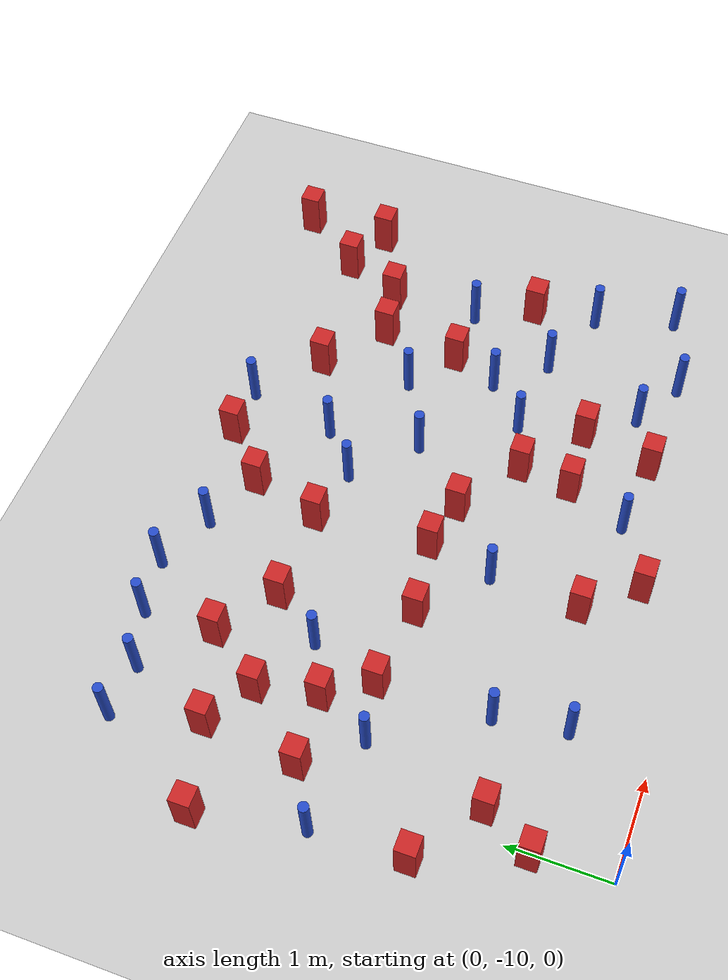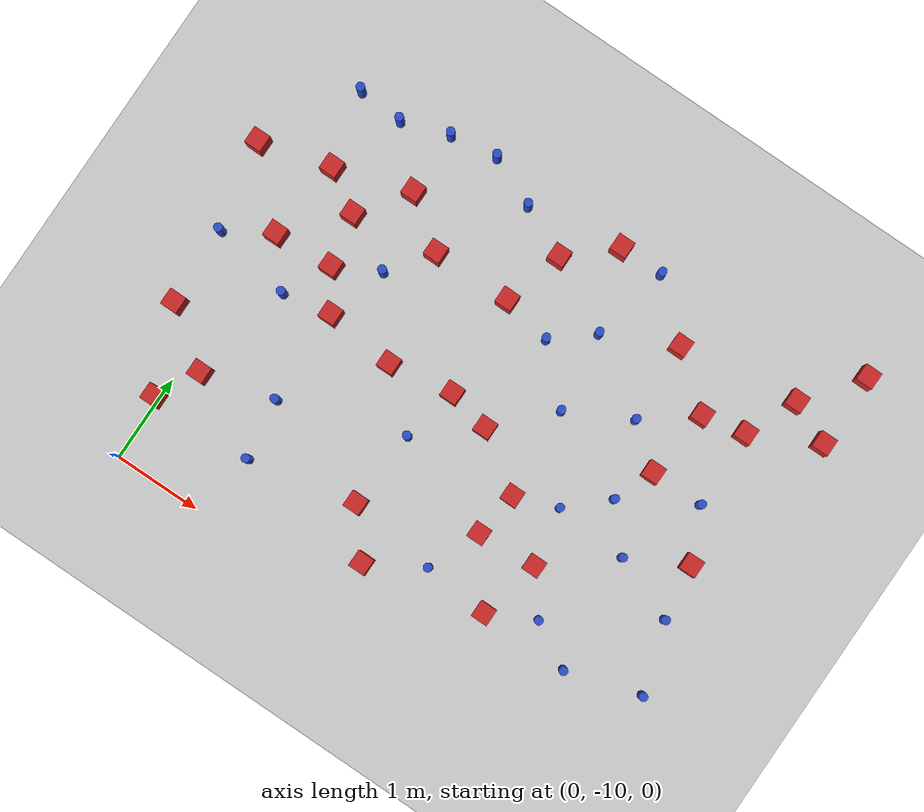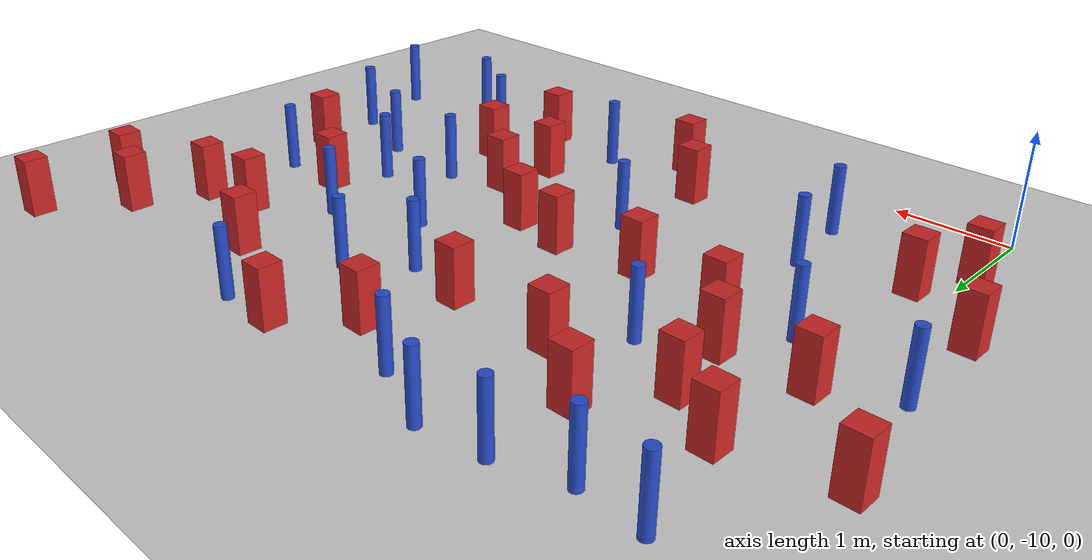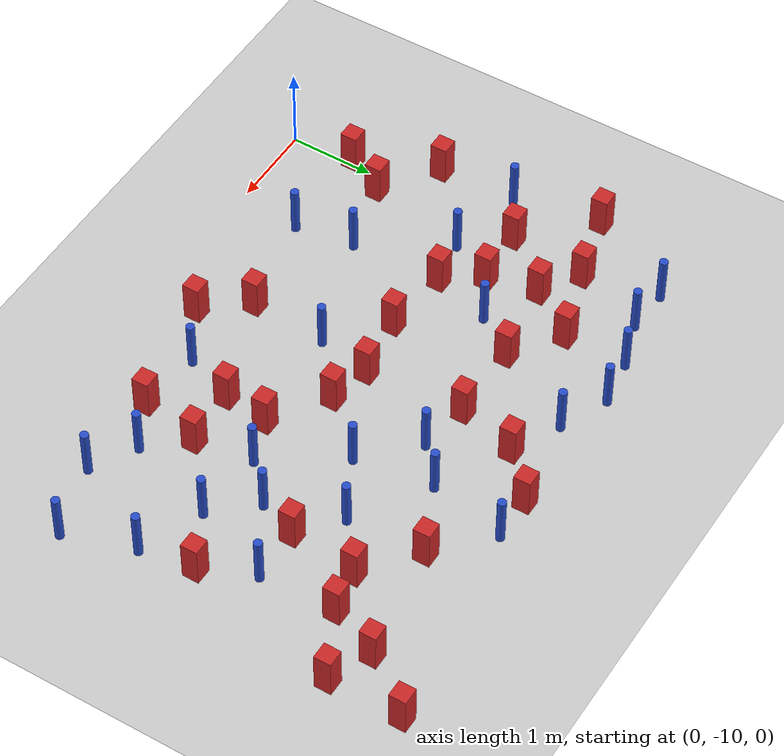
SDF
<sdf version="1.6">
 <world name="default">
  <model name="ground_plane">
   <static>1</static>
   <link name="link">
    <collision name="collision">
     <geometry><plane><normal>0 0 1</normal><size>100 100</size></plane></geometry>
     <surface><friction><ode><mu>100</mu><mu2>50</mu2></ode></friction></surface>
    </collision>
    <visual name="visual">
     <cast_shadows>0</cast_shadows>
     <geometry><plane><normal>0 0 1</normal><size>100 100</size></plane></geometry>
     <material>
      <ambient>1.0 1.0 1.0 1.0</ambient>
      <diffuse>0.8 0.8 0.8 1.0</diffuse>
      <specular>0.01 0.01 0.01 1.000000</specular>
     </material>
    </visual>
   </link>
  </model>
  <model name="pole_obstacle4">
   <static>true</static>
   <pose>1.23686000976 -6.76080997922 -3.09024884793e-07 -7.19054271912e-07 -2.11315075134e-07 -1.93935509265e-07</pose>
   <link name="link">
    <pose>0 0 0.3 0 -0 0</pose>
    <inertial>
     <mass>1</mass>
     <inertia><ixx>0.145833</ixx><ixy>0</ixy><ixz>0</ixz><iyy>0.145833</iyy><iyz>0</iyz><izz>0.125</izz></inertia>
    </inertial>
    <collision name="collision">
     <geometry><cylinder><radius>0.05</radius><length>.6</length></cylinder></geometry>
    </collision>
    <visual name="visual">
     <geometry><cylinder><radius>0.05</radius><length>.6</length></cylinder></geometry>
     <material>
      <script><name>Gazebo/Blue</name><uri>file://media/materials/scripts/gazebo.material</uri></script>
     </material>
    </visual>
   </link>
  </model>
  <model name="square_post_obstacle3">
   <static>true</static>
   <pose>4.9316800552 -6.10498002533 -4.36207812815e-07 3.75137919937e-06 9.77721102514e-07 2.47381364184e-05</pose>
   <link name="link">
    <pose>0 0 0.25 0 -0 0</pose>
    <inertial>
     <mass>100</mass>
     <inertia>
      <ixx>0.166667</ixx>
      <ixy>0</ixy>
      <ixz>0</ixz>
      <iyy>0.166667</iyy>
      <iyz>0</iyz>
      <izz>0.166667</izz>
     </inertia>
    </inertial>
    <collision name="collision"><geometry><box><size>.2 .2 .5</size></box></geometry></collision>
    <visual name="visual">
     <geometry><box><size>.2 .2 .5</size></box></geometry>
     <material>
      <script><name>Gazebo/Red</name><uri>file://media/materials/scripts/gazebo.material</uri></script>
     </material>
    </visual>
   </link>
  </model>
  <model name="square_post_obstacle4">
   <static>true</static>
   <pose>0.746468055196 -7.02115002533 -4.36207812815e-07 3.75137919937e-06 9.77721102514e-07 2.47381364184e-05</pose>
   <link name="link">
    <pose>0 0 0.25 0 -0 0</pose>
    <inertial>
     <mass>100</mass>
     <inertia>
      <ixx>0.166667</ixx>
      <ixy>0</ixy>
      <ixz>0</ixz>
      <iyy>0.166667</iyy>
      <iyz>0</iyz>
      <izz>0.166667</izz>
     </inertia>
    </inertial>
    <collision name="collision"><geometry><box><size>.2 .2 .5</size></box></geometry></collision>
    <visual name="visual">
     <geometry><box><size>.2 .2 .5</size></box></geometry>
     <material>
      <script><name>Gazebo/Red</name><uri>file://media/materials/scripts/gazebo.material</uri></script>
     </material>
    </visual>
   </link>
  </model>
  <model name="square_post_obstacle5">
   <static>true</static>
   <pose>1.0357000552 -7.44995002533 -4.36207812815e-07 3.75137919937e-06 9.77721102514e-07 2.47381364184e-05</pose>
   <link name="link">
    <pose>0 0 0.25 0 -0 0</pose>
    <inertial>
     <mass>100</mass>
     <inertia>
      <ixx>0.166667</ixx>
      <ixy>0</ixy>
      <ixz>0</ixz>
      <iyy>0.166667</iyy>
      <iyz>0</iyz>
      <izz>0.166667</izz>
     </inertia>
    </inertial>
    <collision name="collision"><geometry><box><size>.2 .2 .5</size></box></geometry></collision>
    <visual name="visual">
     <geometry><box><size>.2 .2 .5</size></box></geometry>
     <material>
      <script><name>Gazebo/Red</name><uri>file://media/materials/scripts/gazebo.material</uri></script>
     </material>
    </visual>
   </link>
  </model>
  <model name="square_post_obstacle6">
   <static>true</static>
   <pose>-0.422860944804 -8.28841002533 -4.36207812815e-07 3.75137919937e-06 9.77721102514e-07 2.47381364184e-05</pose>
   <link name="link">
    <pose>0 0 0.25 0 -0 0</pose>
    <inertial>
     <mass>100</mass>
     <inertia>
      <ixx>0.166667</ixx>
      <ixy>0</ixy>
      <ixz>0</ixz>
      <iyy>0.166667</iyy>
      <iyz>0</iyz>
      <izz>0.166667</izz>
     </inertia>
    </inertial>
    <collision name="collision"><geometry><box><size>.2 .2 .5</size></box></geometry></collision>
    <visual name="visual">
     <geometry><box><size>.2 .2 .5</size></box></geometry>
     <material>
      <script><name>Gazebo/Red</name><uri>file://media/materials/scripts/gazebo.material</uri></script>
     </material>
    </visual>
   </link>
  </model>
  <model name="pole_obstacle9">
   <static>true</static>
   <pose>4.71993000976 -8.90393997922 -3.09024884793e-07 -7.19054271912e-07 -2.1131507513e-07 -1.93935509261e-07</pose>
   <link name="link">
    <pose>0 0 0.3 0 -0 0</pose>
    <inertial>
     <mass>1</mass>
     <inertia><ixx>0.145833</ixx><ixy>0</ixy><ixz>0</ixz><iyy>0.145833</iyy><iyz>0</iyz><izz>0.125</izz></inertia>
    </inertial>
    <collision name="collision">
     <geometry><cylinder><radius>0.05</radius><length>.6</length></cylinder></geometry>
    </collision>
    <visual name="visual">
     <geometry><cylinder><radius>0.05</radius><length>.6</length></cylinder></geometry>
     <material>
      <script><name>Gazebo/Blue</name><uri>file://media/materials/scripts/gazebo.material</uri></script>
     </material>
    </visual>
   </link>
  </model>
  <model name="pole_obstacle11">
   <static>true</static>
   <pose>0.473898009761 -7.55703997922 -3.09024884793e-07 -7.19054271912e-07 -2.11315075125e-07 -1.93935509259e-07</pose>
   <link name="link">
    <pose>0 0 0.3 0 -0 0</pose>
    <inertial>
     <mass>1</mass>
     <inertia><ixx>0.145833</ixx><ixy>0</ixy><ixz>0</ixz><iyy>0.145833</iyy><iyz>0</iyz><izz>0.125</izz></inertia>
    </inertial>
    <collision name="collision">
     <geometry><cylinder><radius>0.05</radius><length>.6</length></cylinder></geometry>
    </collision>
    <visual name="visual">
     <geometry><cylinder><radius>0.05</radius><length>.6</length></cylinder></geometry>
     <material>
      <script><name>Gazebo/Blue</name><uri>file://media/materials/scripts/gazebo.material</uri></script>
     </material>
    </visual>
   </link>
  </model>
  <model name="pole_obstacle16">
   <static>true</static>
   <pose>4.23274000976 -7.78472997922 -3.09024884793e-07 -7.19054271911e-07 -2.1131507516e-07 -1.93935509277e-07</pose>
   <link name="link">
    <pose>0 0 0.3 0 -0 0</pose>
    <inertial>
     <mass>1</mass>
     <inertia><ixx>0.145833</ixx><ixy>0</ixy><ixz>0</ixz><iyy>0.145833</iyy><iyz>0</iyz><izz>0.125</izz></inertia>
    </inertial>
    <collision name="collision">
     <geometry><cylinder><radius>0.05</radius><length>.6</length></cylinder></geometry>
    </collision>
    <visual name="visual">
     <geometry><cylinder><radius>0.05</radius><length>.6</length></cylinder></geometry>
     <material>
      <script><name>Gazebo/Blue</name><uri>file://media/materials/scripts/gazebo.material</uri></script>
     </material>
    </visual>
   </link>
  </model>
  <model name="pole_obstacle17">
   <static>true</static>
   <pose>4.37244000976 -6.54633997922 -3.09024884793e-07 -7.19054271911e-07 -2.1131507516e-07 -1.93935509277e-07</pose>
   <link name="link">
    <pose>0 0 0.3 0 -0 0</pose>
    <inertial>
     <mass>1</mass>
     <inertia><ixx>0.145833</ixx><ixy>0</ixy><ixz>0</ixz><iyy>0.145833</iyy><iyz>0</iyz><izz>0.125</izz></inertia>
    </inertial>
    <collision name="collision">
     <geometry><cylinder><radius>0.05</radius><length>.6</length></cylinder></geometry>
    </collision>
    <visual name="visual">
     <geometry><cylinder><radius>0.05</radius><length>.6</length></cylinder></geometry>
     <material>
      <script><name>Gazebo/Blue</name><uri>file://media/materials/scripts/gazebo.material</uri></script>
     </material>
    </visual>
   </link>
  </model>
  <model name="square_post_obstacle13">
   <static>true</static>
   <pose>0.0591860551963 -7.06688002533 -4.36207812815e-07 3.75137919937e-06 9.77721102514e-07 2.47381364184e-05</pose>
   <link name="link">
    <pose>0 0 0.25 0 -0 0</pose>
    <inertial>
     <mass>100</mass>
     <inertia>
      <ixx>0.166667</ixx>
      <ixy>0</ixy>
      <ixz>0</ixz>
      <iyy>0.166667</iyy>
      <iyz>0</iyz>
      <izz>0.166667</izz>
     </inertia>
    </inertial>
    <collision name="collision"><geometry><box><size>.2 .2 .5</size></box></geometry></collision>
    <visual name="visual">
     <geometry><box><size>.2 .2 .5</size></box></geometry>
     <material>
      <script><name>Gazebo/Red</name><uri>file://media/materials/scripts/gazebo.material</uri></script>
     </material>
    </visual>
   </link>
  </model>
  <model name="pole_obstacle18">
   <static>true</static>
   <pose>2.45069000976 -8.07077997922 -3.09024884848e-07 -7.19054271902e-07 -2.11315075199e-07 -1.93935509286e-07</pose>
   <link name="link">
    <pose>0 0 0.3 0 -0 0</pose>
    <inertial>
     <mass>1</mass>
     <inertia><ixx>0.145833</ixx><ixy>0</ixy><ixz>0</ixz><iyy>0.145833</iyy><iyz>0</iyz><izz>0.125</izz></inertia>
    </inertial>
    <collision name="collision">
     <geometry><cylinder><radius>0.05</radius><length>.6</length></cylinder></geometry>
    </collision>
    <visual name="visual">
     <geometry><cylinder><radius>0.05</radius><length>.6</length></cylinder></geometry>
     <material>
      <script><name>Gazebo/Blue</name><uri>file://media/materials/scripts/gazebo.material</uri></script>
     </material>
    </visual>
   </link>
  </model>
  <model name="square_post_obstacle23">
   <static>true</static>
   <pose>1.5911600552 -6.26726002533 -4.36207812815e-07 3.75137919937e-06 9.77721102514e-07 2.47381364184e-05</pose>
   <link name="link">
    <pose>0 0 0.25 0 -0 0</pose>
    <inertial>
     <mass>100</mass>
     <inertia>
      <ixx>0.166667</ixx>
      <ixy>0</ixy>
      <ixz>0</ixz>
      <iyy>0.166667</iyy>
      <iyz>0</iyz>
      <izz>0.166667</izz>
     </inertia>
    </inertial>
    <collision name="collision"><geometry><box><size>.2 .2 .5</size></box></geometry></collision>
    <visual name="visual">
     <geometry><box><size>.2 .2 .5</size></box></geometry>
     <material>
      <script><name>Gazebo/Red</name><uri>file://media/materials/scripts/gazebo.material</uri></script>
     </material>
    </visual>
   </link>
  </model>
  <model name="square_post_obstacle24">
   <static>true</static>
   <pose>2.5116600552 -6.25928002533 -4.36207812815e-07 3.75137919937e-06 9.77721102514e-07 2.47381364184e-05</pose>
   <link name="link">
    <pose>0 0 0.25 0 -0 0</pose>
    <inertial>
     <mass>100</mass>
     <inertia>
      <ixx>0.166667</ixx>
      <ixy>0</ixy>
      <ixz>0</ixz>
      <iyy>0.166667</iyy>
      <iyz>0</iyz>
      <izz>0.166667</izz>
     </inertia>
    </inertial>
    <collision name="collision"><geometry><box><size>.2 .2 .5</size></box></geometry></collision>
    <visual name="visual">
     <geometry><box><size>.2 .2 .5</size></box></geometry>
     <material>
      <script><name>Gazebo/Red</name><uri>file://media/materials/scripts/gazebo.material</uri></script>
     </material>
    </visual>
   </link>
  </model>
  <model name="square_post_obstacle26">
   <static>true</static>
   <pose>2.7080700552 -5.55810002533 -4.36207812815e-07 3.75137919937e-06 9.77721102514e-07 2.47381364184e-05</pose>
   <link name="link">
    <pose>0 0 0.25 0 -0 0</pose>
    <inertial>
     <mass>100</mass>
     <inertia>
      <ixx>0.166667</ixx>
      <ixy>0</ixy>
      <ixz>0</ixz>
      <iyy>0.166667</iyy>
      <iyz>0</iyz>
      <izz>0.166667</izz>
     </inertia>
    </inertial>
    <collision name="collision"><geometry><box><size>.2 .2 .5</size></box></geometry></collision>
    <visual name="visual">
     <geometry><box><size>.2 .2 .5</size></box></geometry>
     <material>
      <script><name>Gazebo/Red</name><uri>file://media/materials/scripts/gazebo.material</uri></script>
     </material>
    </visual>
   </link>
  </model>
  <model name="pole_obstacle35">
   <static>true</static>
   <pose>5.08238000976 -7.84933997922 -3.09024884793e-07 -7.19054271911e-07 -2.1131507516e-07 -1.93935509277e-07</pose>
   <link name="link">
    <pose>0 0 0.3 0 -0 0</pose>
    <inertial>
     <mass>1</mass>
     <inertia><ixx>0.145833</ixx><ixy>0</ixy><ixz>0</ixz><iyy>0.145833</iyy><iyz>0</iyz><izz>0.125</izz></inertia>
    </inertial>
    <collision name="collision">
     <geometry><cylinder><radius>0.05</radius><length>.6</length></cylinder></geometry>
    </collision>
    <visual name="visual">
     <geometry><cylinder><radius>0.05</radius><length>.6</length></cylinder></geometry>
     <material>
      <script><name>Gazebo/Blue</name><uri>file://media/materials/scripts/gazebo.material</uri></script>
     </material>
    </visual>
   </link>
  </model>
  <model name="pole_obstacle37">
   <static>true</static>
   <pose>3.42698000976 -9.10438997922 -3.09024884793e-07 -7.19054271912e-07 -2.11315075137e-07 -1.93935509267e-07</pose>
   <link name="link">
    <pose>0 0 0.3 0 -0 0</pose>
    <inertial>
     <mass>1</mass>
     <inertia><ixx>0.145833</ixx><ixy>0</ixy><ixz>0</ixz><iyy>0.145833</iyy><iyz>0</iyz><izz>0.125</izz></inertia>
    </inertial>
    <collision name="collision">
     <geometry><cylinder><radius>0.05</radius><length>.6</length></cylinder></geometry>
    </collision>
    <visual name="visual">
     <geometry><cylinder><radius>0.05</radius><length>.6</length></cylinder></geometry>
     <material>
      <script><name>Gazebo/Blue</name><uri>file://media/materials/scripts/gazebo.material</uri></script>
     </material>
    </visual>
   </link>
  </model>
  <model name="pole_obstacle38">
   <static>true</static>
   <pose>3.72021000976 -5.09638997922 -3.09024884793e-07 -7.19054271912e-07 -2.11315075134e-07 -1.93935509266e-07</pose>
   <link name="link">
    <pose>0 0 0.3 0 -0 0</pose>
    <inertial>
     <mass>1</mass>
     <inertia><ixx>0.145833</ixx><ixy>0</ixy><ixz>0</ixz><iyy>0.145833</iyy><iyz>0</iyz><izz>0.125</izz></inertia>
    </inertial>
    <collision name="collision">
     <geometry><cylinder><radius>0.05</radius><length>.6</length></cylinder></geometry>
    </collision>
    <visual name="visual">
     <geometry><cylinder><radius>0.05</radius><length>.6</length></cylinder></geometry>
     <material>
      <script><name>Gazebo/Blue</name><uri>file://media/materials/scripts/gazebo.material</uri></script>
     </material>
    </visual>
   </link>
  </model>
  <model name="pole_obstacle44">
   <static>true</static>
   <pose>5.45719000976 -6.90864997922 -3.09024884793e-07 -7.19054271911e-07 -2.1131507516e-07 -1.93935509277e-07</pose>
   <link name="link">
    <pose>0 0 0.3 0 -0 0</pose>
    <inertial>
     <mass>1</mass>
     <inertia><ixx>0.145833</ixx><ixy>0</ixy><ixz>0</ixz><iyy>0.145833</iyy><iyz>0</iyz><izz>0.125</izz></inertia>
    </inertial>
    <collision name="collision">
     <geometry><cylinder><radius>0.05</radius><length>.6</length></cylinder></geometry>
    </collision>
    <visual name="visual">
     <geometry><cylinder><radius>0.05</radius><length>.6</length></cylinder></geometry>
     <material>
      <script><name>Gazebo/Blue</name><uri>file://media/materials/scripts/gazebo.material</uri></script>
     </material>
    </visual>
   </link>
  </model>
  <model name="pole_obstacle46">
   <static>true</static>
   <pose>2.12249000976 -5.29361997922 -3.09024884793e-07 -7.19054271912e-07 -2.11315075134e-07 -1.93935509266e-07</pose>
   <link name="link">
    <pose>0 0 0.3 0 -0 0</pose>
    <inertial>
     <mass>1</mass>
     <inertia><ixx>0.145833</ixx><ixy>0</ixy><ixz>0</ixz><iyy>0.145833</iyy><iyz>0</iyz><izz>0.125</izz></inertia>
    </inertial>
    <collision name="collision">
     <geometry><cylinder><radius>0.05</radius><length>.6</length></cylinder></geometry>
    </collision>
    <visual name="visual">
     <geometry><cylinder><radius>0.05</radius><length>.6</length></cylinder></geometry>
     <material>
      <script><name>Gazebo/Blue</name><uri>file://media/materials/scripts/gazebo.material</uri></script>
     </material>
    </visual>
   </link>
  </model>
  <model name="pole_obstacle54">
   <static>true</static>
   <pose>5.83145000976 -8.14178997922 -3.09024884793e-07 -7.19054271912e-07 -2.1131507513e-07 -1.93935509261e-07</pose>
   <link name="link">
    <pose>0 0 0.3 0 -0 0</pose>
    <inertial>
     <mass>1</mass>
     <inertia><ixx>0.145833</ixx><ixy>0</ixy><ixz>0</ixz><iyy>0.145833</iyy><iyz>0</iyz><izz>0.125</izz></inertia>
    </inertial>
    <collision name="collision">
     <geometry><cylinder><radius>0.05</radius><length>.6</length></cylinder></geometry>
    </collision>
    <visual name="visual">
     <geometry><cylinder><radius>0.05</radius><length>.6</length></cylinder></geometry>
     <material>
      <script><name>Gazebo/Blue</name><uri>file://media/materials/scripts/gazebo.material</uri></script>
     </material>
    </visual>
   </link>
  </model>
  <model name="square_post_obstacle43">
   <static>true</static>
   <pose>0.154384055196 -6.13564002533 -4.36207812815e-07 3.75137919937e-06 9.77721102514e-07 2.47381364184e-05</pose>
   <link name="link">
    <pose>0 0 0.25 0 -0 0</pose>
    <inertial>
     <mass>100</mass>
     <inertia>
      <ixx>0.166667</ixx>
      <ixy>0</ixy>
      <ixz>0</ixz>
      <iyy>0.166667</iyy>
      <iyz>0</iyz>
      <izz>0.166667</izz>
     </inertia>
    </inertial>
    <collision name="collision"><geometry><box><size>.2 .2 .5</size></box></geometry></collision>
    <visual name="visual">
     <geometry><box><size>.2 .2 .5</size></box></geometry>
     <material>
      <script><name>Gazebo/Red</name><uri>file://media/materials/scripts/gazebo.material</uri></script>
     </material>
    </visual>
   </link>
  </model>
  <model name="pole_obstacle57">
   <static>true</static>
   <pose>1.17371000976 -9.23755997922 -3.09024884793e-07 -7.19054271912e-07 -2.1131507515e-07 -1.93935509273e-07</pose>
   <link name="link">
    <pose>0 0 0.3 0 -0 0</pose>
    <inertial>
     <mass>1</mass>
     <inertia><ixx>0.145833</ixx><ixy>0</ixy><ixz>0</ixz><iyy>0.145833</iyy><iyz>0</iyz><izz>0.125</izz></inertia>
    </inertial>
    <collision name="collision">
     <geometry><cylinder><radius>0.05</radius><length>.6</length></cylinder></geometry>
    </collision>
    <visual name="visual">
     <geometry><cylinder><radius>0.05</radius><length>.6</length></cylinder></geometry>
     <material>
      <script><name>Gazebo/Blue</name><uri>file://media/materials/scripts/gazebo.material</uri></script>
     </material>
    </visual>
   </link>
  </model>
  <model name="square_post_obstacle46">
   <static>true</static>
   <pose>4.8444400552 -6.90769002533 -4.36207812815e-07 3.75137919937e-06 9.77721102514e-07 2.47381364184e-05</pose>
   <link name="link">
    <pose>0 0 0.25 0 -0 0</pose>
    <inertial>
     <mass>100</mass>
     <inertia>
      <ixx>0.166667</ixx>
      <ixy>0</ixy>
      <ixz>0</ixz>
      <iyy>0.166667</iyy>
      <iyz>0</iyz>
      <izz>0.166667</izz>
     </inertia>
    </inertial>
    <collision name="collision"><geometry><box><size>.2 .2 .5</size></box></geometry></collision>
    <visual name="visual">
     <geometry><box><size>.2 .2 .5</size></box></geometry>
     <material>
      <script><name>Gazebo/Red</name><uri>file://media/materials/scripts/gazebo.material</uri></script>
     </material>
    </visual>
   </link>
  </model>
  <model name="pole_obstacle72">
   <static>true</static>
   <pose>0.466611009761 -5.30973997922 -3.09024884793e-07 -7.19054271912e-07 -2.11315075128e-07 -1.9393550926e-07</pose>
   <link name="link">
    <pose>0 0 0.3 0 -0 0</pose>
    <inertial>
     <mass>1</mass>
     <inertia><ixx>0.145833</ixx><ixy>0</ixy><ixz>0</ixz><iyy>0.145833</iyy><iyz>0</iyz><izz>0.125</izz></inertia>
    </inertial>
    <collision name="collision">
     <geometry><cylinder><radius>0.05</radius><length>.6</length></cylinder></geometry>
    </collision>
    <visual name="visual">
     <geometry><cylinder><radius>0.05</radius><length>.6</length></cylinder></geometry>
     <material>
      <script><name>Gazebo/Blue</name><uri>file://media/materials/scripts/gazebo.material</uri></script>
     </material>
    </visual>
   </link>
  </model>
  <model name="square_post_obstacle63">
   <static>true</static>
   <pose>3.0874200552 -7.52384002533 -4.36207812815e-07 3.75137919937e-06 9.77721102514e-07 2.47381364184e-05</pose>
   <link name="link">
    <pose>0 0 0.25 0 -0 0</pose>
    <inertial>
     <mass>100</mass>
     <inertia>
      <ixx>0.166667</ixx>
      <ixy>0</ixy>
      <ixz>0</ixz>
      <iyy>0.166667</iyy>
      <iyz>0</iyz>
      <izz>0.166667</izz>
     </inertia>
    </inertial>
    <collision name="collision"><geometry><box><size>.2 .2 .5</size></box></geometry></collision>
    <visual name="visual">
     <geometry><box><size>.2 .2 .5</size></box></geometry>
     <material>
      <script><name>Gazebo/Red</name><uri>file://media/materials/scripts/gazebo.material</uri></script>
     </material>
    </visual>
   </link>
  </model>
  <model name="pole_obstacle77">
   <static>true</static>
   <pose>3.52622000976 -6.00272997922 -3.09024884848e-07 -7.19054271903e-07 -2.11315075193e-07 -1.93935509285e-07</pose>
   <link name="link">
    <pose>0 0 0.3 0 -0 0</pose>
    <inertial>
     <mass>1</mass>
     <inertia><ixx>0.145833</ixx><ixy>0</ixy><ixz>0</ixz><iyy>0.145833</iyy><iyz>0</iyz><izz>0.125</izz></inertia>
    </inertial>
    <collision name="collision">
     <geometry><cylinder><radius>0.05</radius><length>.6</length></cylinder></geometry>
    </collision>
    <visual name="visual">
     <geometry><cylinder><radius>0.05</radius><length>.6</length></cylinder></geometry>
     <material>
      <script><name>Gazebo/Blue</name><uri>file://media/materials/scripts/gazebo.material</uri></script>
     </material>
    </visual>
   </link>
  </model>
  <model name="square_post_obstacle74">
   <static>true</static>
   <pose>3.2084100552 -5.10127002533 -4.36207812815e-07 3.75137919937e-06 9.77721102514e-07 2.47381364184e-05</pose>
   <link name="link">
    <pose>0 0 0.25 0 -0 0</pose>
    <inertial>
     <mass>100</mass>
     <inertia>
      <ixx>0.166667</ixx>
      <ixy>0</ixy>
      <ixz>0</ixz>
      <iyy>0.166667</iyy>
      <iyz>0</iyz>
      <izz>0.166667</izz>
     </inertia>
    </inertial>
    <collision name="collision"><geometry><box><size>.2 .2 .5</size></box></geometry></collision>
    <visual name="visual">
     <geometry><box><size>.2 .2 .5</size></box></geometry>
     <material>
      <script><name>Gazebo/Red</name><uri>file://media/materials/scripts/gazebo.material</uri></script>
     </material>
    </visual>
   </link>
  </model>
  <model name="pole_obstacle87">
   <static>true</static>
   <pose>3.09178000976 -6.37316997922 -3.09024884793e-07 -7.19054271912e-07 -2.11315075134e-07 -1.93935509266e-07</pose>
   <link name="link">
    <pose>0 0 0.3 0 -0 0</pose>
    <inertial>
     <mass>1</mass>
     <inertia><ixx>0.145833</ixx><ixy>0</ixy><ixz>0</ixz><iyy>0.145833</iyy><iyz>0</iyz><izz>0.125</izz></inertia>
    </inertial>
    <collision name="collision">
     <geometry><cylinder><radius>0.05</radius><length>.6</length></cylinder></geometry>
    </collision>
    <visual name="visual">
     <geometry><cylinder><radius>0.05</radius><length>.6</length></cylinder></geometry>
     <material>
      <script><name>Gazebo/Blue</name><uri>file://media/materials/scripts/gazebo.material</uri></script>
     </material>
    </visual>
   </link>
  </model>
  <model name="square_post_obstacle75">
   <static>true</static>
   <pose>5.6851700552 -5.41553002533 -4.36207812815e-07 3.75137919937e-06 9.77721102514e-07 2.47381364184e-05</pose>
   <link name="link">
    <pose>0 0 0.25 0 -0 0</pose>
    <inertial>
     <mass>100</mass>
     <inertia>
      <ixx>0.166667</ixx>
      <ixy>0</ixy>
      <ixz>0</ixz>
      <iyy>0.166667</iyy>
      <iyz>0</iyz>
      <izz>0.166667</izz>
     </inertia>
    </inertial>
    <collision name="collision"><geometry><box><size>.2 .2 .5</size></box></geometry></collision>
    <visual name="visual">
     <geometry><box><size>.2 .2 .5</size></box></geometry>
     <material>
      <script><name>Gazebo/Red</name><uri>file://media/materials/scripts/gazebo.material</uri></script>
     </material>
    </visual>
   </link>
  </model>
  <model name="square_post_obstacle76">
   <static>true</static>
   <pose>6.1777600552 -5.62799002533 -4.36207812815e-07 3.75137919937e-06 9.77721102514e-07 2.47381364184e-05</pose>
   <link name="link">
    <pose>0 0 0.25 0 -0 0</pose>
    <inertial>
     <mass>100</mass>
     <inertia>
      <ixx>0.166667</ixx>
      <ixy>0</ixy>
      <ixz>0</ixz>
      <iyy>0.166667</iyy>
      <iyz>0</iyz>
      <izz>0.166667</izz>
     </inertia>
    </inertial>
    <collision name="collision"><geometry><box><size>.2 .2 .5</size></box></geometry></collision>
    <visual name="visual">
     <geometry><box><size>.2 .2 .5</size></box></geometry>
     <material>
      <script><name>Gazebo/Red</name><uri>file://media/materials/scripts/gazebo.material</uri></script>
     </material>
    </visual>
   </link>
  </model>
  <model name="square_post_obstacle85">
   <static>true</static>
   <pose>4.1937100552 -9.16826002533 -4.36207812815e-07 3.75137919937e-06 9.77721102514e-07 2.47381364184e-05</pose>
   <link name="link">
    <pose>0 0 0.25 0 -0 0</pose>
    <inertial>
     <mass>100</mass>
     <inertia>
      <ixx>0.166667</ixx>
      <ixy>0</ixy>
      <ixz>0</ixz>
      <iyy>0.166667</iyy>
      <iyz>0</iyz>
      <izz>0.166667</izz>
     </inertia>
    </inertial>
    <collision name="collision"><geometry><box><size>.2 .2 .5</size></box></geometry></collision>
    <visual name="visual">
     <geometry><box><size>.2 .2 .5</size></box></geometry>
     <material>
      <script><name>Gazebo/Red</name><uri>file://media/materials/scripts/gazebo.material</uri></script>
     </material>
    </visual>
   </link>
  </model>
  <model name="pole_obstacle110">
   <static>true</static>
   <pose>3.65993000976 -6.91861997922 -3.09024884793e-07 -7.19054271912e-07 -2.11315075134e-07 -1.93935509266e-07</pose>
   <link name="link">
    <pose>0 0 0.3 0 -0 0</pose>
    <inertial>
     <mass>1</mass>
     <inertia><ixx>0.145833</ixx><ixy>0</ixy><ixz>0</ixz><iyy>0.145833</iyy><iyz>0</iyz><izz>0.125</izz></inertia>
    </inertial>
    <collision name="collision">
     <geometry><cylinder><radius>0.05</radius><length>.6</length></cylinder></geometry>
    </collision>
    <visual name="visual">
     <geometry><cylinder><radius>0.05</radius><length>.6</length></cylinder></geometry>
     <material>
      <script><name>Gazebo/Blue</name><uri>file://media/materials/scripts/gazebo.material</uri></script>
     </material>
    </visual>
   </link>
  </model>
  <model name="pole_obstacle113">
   <static>true</static>
   <pose>6.08856000976 -8.94756997922 -3.09024884793e-07 -7.19054271912e-07 -2.1131507513e-07 -1.93935509261e-07</pose>
   <link name="link">
    <pose>0 0 0.3 0 -0 0</pose>
    <inertial>
     <mass>1</mass>
     <inertia><ixx>0.145833</ixx><ixy>0</ixy><ixz>0</ixz><iyy>0.145833</iyy><iyz>0</iyz><izz>0.125</izz></inertia>
    </inertial>
    <collision name="collision">
     <geometry><cylinder><radius>0.05</radius><length>.6</length></cylinder></geometry>
    </collision>
    <visual name="visual">
     <geometry><cylinder><radius>0.05</radius><length>.6</length></cylinder></geometry>
     <material>
      <script><name>Gazebo/Blue</name><uri>file://media/materials/scripts/gazebo.material</uri></script>
     </material>
    </visual>
   </link>
  </model>
  <model name="square_post_obstacle119">
   <static>true</static>
   <pose>0.227092055196 -8.75431002533 -4.36207812815e-07 3.75137919937e-06 9.77721102514e-07 2.47381364184e-05</pose>
   <link name="link">
    <pose>0 0 0.25 0 -0 0</pose>
    <inertial>
     <mass>100</mass>
     <inertia>
      <ixx>0.166667</ixx>
      <ixy>0</ixy>
      <ixz>0</ixz>
      <iyy>0.166667</iyy>
      <iyz>0</iyz>
      <izz>0.166667</izz>
     </inertia>
    </inertial>
    <collision name="collision"><geometry><box><size>.2 .2 .5</size></box></geometry></collision>
    <visual name="visual">
     <geometry><box><size>.2 .2 .5</size></box></geometry>
     <material>
      <script><name>Gazebo/Red</name><uri>file://media/materials/scripts/gazebo.material</uri></script>
     </material>
    </visual>
   </link>
  </model>
  <model name="square_post_obstacle122">
   <static>true</static>
   <pose>4.3270000552 -5.62203002533 -4.36207812815e-07 3.75137919937e-06 9.77721102514e-07 2.47381364184e-05</pose>
   <link name="link">
    <pose>0 0 0.25 0 -0 0</pose>
    <inertial>
     <mass>100</mass>
     <inertia>
      <ixx>0.166667</ixx>
      <ixy>0</ixy>
      <ixz>0</ixz>
      <iyy>0.166667</iyy>
      <iyz>0</iyz>
      <izz>0.166667</izz>
     </inertia>
    </inertial>
    <collision name="collision"><geometry><box><size>.2 .2 .5</size></box></geometry></collision>
    <visual name="visual">
     <geometry><box><size>.2 .2 .5</size></box></geometry>
     <material>
      <script><name>Gazebo/Red</name><uri>file://media/materials/scripts/gazebo.material</uri></script>
     </material>
    </visual>
   </link>
  </model>
  <model name="pole_obstacle130">
   <static>true</static>
   <pose>1.06817000976 -8.54117997922 -3.09024884793e-07 -7.19054271912e-07 -2.1131507515e-07 -1.93935509273e-07</pose>
   <link name="link">
    <pose>0 0 0.3 0 -0 0</pose>
    <inertial>
     <mass>1</mass>
     <inertia><ixx>0.145833</ixx><ixy>0</ixy><ixz>0</ixz><iyy>0.145833</iyy><iyz>0</iyz><izz>0.125</izz></inertia>
    </inertial>
    <collision name="collision">
     <geometry><cylinder><radius>0.05</radius><length>.6</length></cylinder></geometry>
    </collision>
    <visual name="visual">
     <geometry><cylinder><radius>0.05</radius><length>.6</length></cylinder></geometry>
     <material>
      <script><name>Gazebo/Blue</name><uri>file://media/materials/scripts/gazebo.material</uri></script>
     </material>
    </visual>
   </link>
  </model>
  <model name="square_post_obstacle126">
   <static>true</static>
   <pose>1.8498000552 -7.53410002533 -4.36207812815e-07 3.75137919937e-06 9.77721102514e-07 2.47381364184e-05</pose>
   <link name="link">
    <pose>0 0 0.25 0 -0 0</pose>
    <inertial>
     <mass>100</mass>
     <inertia>
      <ixx>0.166667</ixx>
      <ixy>0</ixy>
      <ixz>0</ixz>
      <iyy>0.166667</iyy>
      <iyz>0</iyz>
      <izz>0.166667</izz>
     </inertia>
    </inertial>
    <collision name="collision"><geometry><box><size>.2 .2 .5</size></box></geometry></collision>
    <visual name="visual">
     <geometry><box><size>.2 .2 .5</size></box></geometry>
     <material>
      <script><name>Gazebo/Red</name><uri>file://media/materials/scripts/gazebo.material</uri></script>
     </material>
    </visual>
   </link>
  </model>
  <model name="square_post_obstacle132">
   <static>true</static>
   <pose>3.7396200552 -7.96233002533 -4.36207812815e-07 3.75137919937e-06 9.77721102514e-07 2.47381364184e-05</pose>
   <link name="link">
    <pose>0 0 0.25 0 -0 0</pose>
    <inertial>
     <mass>100</mass>
     <inertia>
      <ixx>0.166667</ixx>
      <ixy>0</ixy>
      <ixz>0</ixz>
      <iyy>0.166667</iyy>
      <iyz>0</iyz>
      <izz>0.166667</izz>
     </inertia>
    </inertial>
    <collision name="collision"><geometry><box><size>.2 .2 .5</size></box></geometry></collision>
    <visual name="visual">
     <geometry><box><size>.2 .2 .5</size></box></geometry>
     <material>
      <script><name>Gazebo/Red</name><uri>file://media/materials/scripts/gazebo.material</uri></script>
     </material>
    </visual>
   </link>
  </model>
  <model name="pole_obstacle153">
   <static>true</static>
   <pose>1.55206000976 -5.04678997922 -3.09024884793e-07 -7.19054271912e-07 -2.11315075134e-07 -1.93935509265e-07</pose>
   <link name="link">
    <pose>0 0 0.3 0 -0 0</pose>
    <inertial>
     <mass>1</mass>
     <inertia><ixx>0.145833</ixx><ixy>0</ixy><ixz>0</ixz><iyy>0.145833</iyy><iyz>0</iyz><izz>0.125</izz></inertia>
    </inertial>
    <collision name="collision">
     <geometry><cylinder><radius>0.05</radius><length>.6</length></cylinder></geometry>
    </collision>
    <visual name="visual">
     <geometry><cylinder><radius>0.05</radius><length>.6</length></cylinder></geometry>
     <material>
      <script><name>Gazebo/Blue</name><uri>file://media/materials/scripts/gazebo.material</uri></script>
     </material>
    </visual>
   </link>
  </model>
  <model name="pole_obstacle155">
   <static>true</static>
   <pose>1.00800000976 -5.12987997922 -3.09024884793e-07 -7.19054271912e-07 -2.11315075136e-07 -1.93935509265e-07</pose>
   <link name="link">
    <pose>0 0 0.3 0 -0 0</pose>
    <inertial>
     <mass>1</mass>
     <inertia><ixx>0.145833</ixx><ixy>0</ixy><ixz>0</ixz><iyy>0.145833</iyy><iyz>0</iyz><izz>0.125</izz></inertia>
    </inertial>
    <collision name="collision">
     <geometry><cylinder><radius>0.05</radius><length>.6</length></cylinder></geometry>
    </collision>
    <visual name="visual">
     <geometry><cylinder><radius>0.05</radius><length>.6</length></cylinder></geometry>
     <material>
      <script><name>Gazebo/Blue</name><uri>file://media/materials/scripts/gazebo.material</uri></script>
     </material>
    </visual>
   </link>
  </model>
  <model name="pole_obstacle156">
   <static>true</static>
   <pose>5.23554000976 -9.19646997922 -3.09024884793e-07 -7.19054271912e-07 -2.1131507513e-07 -1.93935509261e-07</pose>
   <link name="link">
    <pose>0 0 0.3 0 -0 0</pose>
    <inertial>
     <mass>1</mass>
     <inertia><ixx>0.145833</ixx><ixy>0</ixy><ixz>0</ixz><iyy>0.145833</iyy><iyz>0</iyz><izz>0.125</izz></inertia>
    </inertial>
    <collision name="collision">
     <geometry><cylinder><radius>0.05</radius><length>.6</length></cylinder></geometry>
    </collision>
    <visual name="visual">
     <geometry><cylinder><radius>0.05</radius><length>.6</length></cylinder></geometry>
     <material>
      <script><name>Gazebo/Blue</name><uri>file://media/materials/scripts/gazebo.material</uri></script>
     </material>
    </visual>
   </link>
  </model>
  <model name="square_post_obstacle159">
   <static>true</static>
   <pose>1.0229100552 -5.86207002533 -4.36207812815e-07 3.75137919937e-06 9.77721102514e-07 2.47381364184e-05</pose>
   <link name="link">
    <pose>0 0 0.25 0 -0 0</pose>
    <inertial>
     <mass>100</mass>
     <inertia>
      <ixx>0.166667</ixx>
      <ixy>0</ixy>
      <ixz>0</ixz>
      <iyy>0.166667</iyy>
      <iyz>0</iyz>
      <izz>0.166667</izz>
     </inertia>
    </inertial>
    <collision name="collision"><geometry><box><size>.2 .2 .5</size></box></geometry></collision>
    <visual name="visual">
     <geometry><box><size>.2 .2 .5</size></box></geometry>
     <material>
      <script><name>Gazebo/Red</name><uri>file://media/materials/scripts/gazebo.material</uri></script>
     </material>
    </visual>
   </link>
  </model>
  <model name="square_post_obstacle165">
   <static>true</static>
   <pose>5.7373400552 -7.49909002533 -4.36207812815e-07 3.75137919937e-06 9.77721102514e-07 2.47381364184e-05</pose>
   <link name="link">
    <pose>0 0 0.25 0 -0 0</pose>
    <inertial>
     <mass>100</mass>
     <inertia>
      <ixx>0.166667</ixx>
      <ixy>0</ixy>
      <ixz>0</ixz>
      <iyy>0.166667</iyy>
      <iyz>0</iyz>
      <izz>0.166667</izz>
     </inertia>
    </inertial>
    <collision name="collision"><geometry><box><size>.2 .2 .5</size></box></geometry></collision>
    <visual name="visual">
     <geometry><box><size>.2 .2 .5</size></box></geometry>
     <material>
      <script><name>Gazebo/Red</name><uri>file://media/materials/scripts/gazebo.material</uri></script>
     </material>
    </visual>
   </link>
  </model>
  <model name="square_post_obstacle166">
   <static>true</static>
   <pose>0.619027055196 -6.42593002533 -4.36207812815e-07 3.75137919937e-06 9.77721102514e-07 2.47381364184e-05</pose>
   <link name="link">
    <pose>0 0 0.25 0 -0 0</pose>
    <inertial>
     <mass>100</mass>
     <inertia>
      <ixx>0.166667</ixx>
      <ixy>0</ixy>
      <ixz>0</ixz>
      <iyy>0.166667</iyy>
      <iyz>0</iyz>
      <izz>0.166667</izz>
     </inertia>
    </inertial>
    <collision name="collision"><geometry><box><size>.2 .2 .5</size></box></geometry></collision>
    <visual name="visual">
     <geometry><box><size>.2 .2 .5</size></box></geometry>
     <material>
      <script><name>Gazebo/Red</name><uri>file://media/materials/scripts/gazebo.material</uri></script>
     </material>
    </visual>
   </link>
  </model>
  <model name="square_post_obstacle170">
   <static>true</static>
   <pose>5.4255200552 -6.00572002533 -4.36207812815e-07 3.75137919937e-06 9.77721102514e-07 2.47381364184e-05</pose>
   <link name="link">
    <pose>0 0 0.25 0 -0 0</pose>
    <inertial>
     <mass>100</mass>
     <inertia>
      <ixx>0.166667</ixx>
      <ixy>0</ixy>
      <ixz>0</ixz>
      <iyy>0.166667</iyy>
      <iyz>0</iyz>
      <izz>0.166667</izz>
     </inertia>
    </inertial>
    <collision name="collision"><geometry><box><size>.2 .2 .5</size></box></geometry></collision>
    <visual name="visual">
     <geometry><box><size>.2 .2 .5</size></box></geometry>
     <material>
      <script><name>Gazebo/Red</name><uri>file://media/materials/scripts/gazebo.material</uri></script>
     </material>
    </visual>
   </link>
  </model>
  <model name="square_post_obstacle172">
   <static>true</static>
   <pose>2.5894200552 -7.41655002533 -4.36207812815e-07 3.75137919937e-06 9.77721102514e-07 2.47381364184e-05</pose>
   <link name="link">
    <pose>0 0 0.25 0 -0 0</pose>
    <inertial>
     <mass>100</mass>
     <inertia>
      <ixx>0.166667</ixx>
      <ixy>0</ixy>
      <ixz>0</ixz>
      <iyy>0.166667</iyy>
      <iyz>0</iyz>
      <izz>0.166667</izz>
     </inertia>
    </inertial>
    <collision name="collision"><geometry><box><size>.2 .2 .5</size></box></geometry></collision>
    <visual name="visual">
     <geometry><box><size>.2 .2 .5</size></box></geometry>
     <material>
      <script><name>Gazebo/Red</name><uri>file://media/materials/scripts/gazebo.material</uri></script>
     </material>
    </visual>
   </link>
  </model>
  <model name="square_post_obstacle181">
   <static>true</static>
   <pose>-0.661646944804 -6.35474002533 -4.36207812815e-07 3.75137919937e-06 9.77721102514e-07 2.47381364184e-05</pose>
   <link name="link">
    <pose>0 0 0.25 0 -0 0</pose>
    <inertial>
     <mass>100</mass>
     <inertia>
      <ixx>0.166667</ixx>
      <ixy>0</ixy>
      <ixz>0</ixz>
      <iyy>0.166667</iyy>
      <iyz>0</iyz>
      <izz>0.166667</izz>
     </inertia>
    </inertial>
    <collision name="collision"><geometry><box><size>.2 .2 .5</size></box></geometry></collision>
    <visual name="visual">
     <geometry><box><size>.2 .2 .5</size></box></geometry>
     <material>
      <script><name>Gazebo/Red</name><uri>file://media/materials/scripts/gazebo.material</uri></script>
     </material>
    </visual>
   </link>
  </model>
  <model name="square_post_obstacle184">
   <static>true</static>
   <pose>2.8129200552 -9.46205002533 -4.36207812815e-07 3.75137919937e-06 9.77721102514e-07 2.47381364184e-05</pose>
   <link name="link">
    <pose>0 0 0.25 0 -0 0</pose>
    <inertial>
     <mass>100</mass>
     <inertia>
      <ixx>0.166667</ixx>
      <ixy>0</ixy>
      <ixz>0</ixz>
      <iyy>0.166667</iyy>
      <iyz>0</iyz>
      <izz>0.166667</izz>
     </inertia>
    </inertial>
    <collision name="collision"><geometry><box><size>.2 .2 .5</size></box></geometry></collision>
    <visual name="visual">
     <geometry><box><size>.2 .2 .5</size></box></geometry>
     <material>
      <script><name>Gazebo/Red</name><uri>file://media/materials/scripts/gazebo.material</uri></script>
     </material>
    </visual>
   </link>
  </model>
  <model name="square_post_obstacle196">
   <static>true</static>
   <pose>4.3540300552 -8.44911002533 -4.36207812815e-07 3.75137919937e-06 9.77721102514e-07 2.47381364184e-05</pose>
   <link name="link">
    <pose>0 0 0.25 0 -0 0</pose>
    <inertial>
     <mass>100</mass>
     <inertia>
      <ixx>0.166667</ixx>
      <ixy>0</ixy>
      <ixz>0</ixz>
      <iyy>0.166667</iyy>
      <iyz>0</iyz>
      <izz>0.166667</izz>
     </inertia>
    </inertial>
    <collision name="collision"><geometry><box><size>.2 .2 .5</size></box></geometry></collision>
    <visual name="visual">
     <geometry><box><size>.2 .2 .5</size></box></geometry>
     <material>
      <script><name>Gazebo/Red</name><uri>file://media/materials/scripts/gazebo.material</uri></script>
     </material>
    </visual>
   </link>
  </model>
  <model name="square_post_obstacle197">
   <static>true</static>
   <pose>3.6730000552 -8.49424002533 -4.36207812815e-07 3.75137919937e-06 9.77721102514e-07 2.47381364184e-05</pose>
   <link name="link">
    <pose>0 0 0.25 0 -0 0</pose>
    <inertial>
     <mass>100</mass>
     <inertia>
      <ixx>0.166667</ixx>
      <ixy>0</ixy>
      <ixz>0</ixz>
      <iyy>0.166667</iyy>
      <iyz>0</iyz>
      <izz>0.166667</izz>
     </inertia>
    </inertial>
    <collision name="collision"><geometry><box><size>.2 .2 .5</size></box></geometry></collision>
    <visual name="visual">
     <geometry><box><size>.2 .2 .5</size></box></geometry>
     <material>
      <script><name>Gazebo/Red</name><uri>file://media/materials/scripts/gazebo.material</uri></script>
     </material>
    </visual>
   </link>
  </model>
  <model name="square_post_obstacle207">
   <static>true</static>
   <pose>-0.0361819448037 -9.24213002533 -4.36207812815e-07 3.75137919937e-06 9.77721102514e-07 2.47381364184e-05</pose>
   <link name="link">
    <pose>0 0 0.25 0 -0 0</pose>
    <inertial>
     <mass>100</mass>
     <inertia>
      <ixx>0.166667</ixx>
      <ixy>0</ixy>
      <ixz>0</ixz>
      <iyy>0.166667</iyy>
      <iyz>0</iyz>
      <izz>0.166667</izz>
     </inertia>
    </inertial>
    <collision name="collision"><geometry><box><size>.2 .2 .5</size></box></geometry></collision>
    <visual name="visual">
     <geometry><box><size>.2 .2 .5</size></box></geometry>
     <material>
      <script><name>Gazebo/Red</name><uri>file://media/materials/scripts/gazebo.material</uri></script>
     </material>
    </visual>
   </link>
  </model>
  <model name="square_post_obstacle213">
   <static>true</static>
   <pose>6.1699200552 -4.77284002533 -4.36207812815e-07 3.75137919937e-06 9.77721102514e-07 2.47381364184e-05</pose>
   <link name="link">
    <pose>0 0 0.25 0 -0 0</pose>
    <inertial>
     <mass>100</mass>
     <inertia>
      <ixx>0.166667</ixx>
      <ixy>0</ixy>
      <ixz>0</ixz>
      <iyy>0.166667</iyy>
      <iyz>0</iyz>
      <izz>0.166667</izz>
     </inertia>
    </inertial>
    <collision name="collision"><geometry><box><size>.2 .2 .5</size></box></geometry></collision>
    <visual name="visual">
     <geometry><box><size>.2 .2 .5</size></box></geometry>
     <material>
      <script><name>Gazebo/Red</name><uri>file://media/materials/scripts/gazebo.material</uri></script>
     </material>
    </visual>
   </link>
  </model>
  <model name="pole_obstacle205">
   <static>true</static>
   <pose>-0.0588719902391 -5.27857997922 -3.09024884793e-07 -7.19054271912e-07 -2.11315075141e-07 -1.93935509268e-07</pose>
   <link name="link">
    <pose>0 0 0.3 0 -0 0</pose>
    <inertial>
     <mass>1</mass>
     <inertia><ixx>0.145833</ixx><ixy>0</ixy><ixz>0</ixz><iyy>0.145833</iyy><iyz>0</iyz><izz>0.125</izz></inertia>
    </inertial>
    <collision name="collision">
     <geometry><cylinder><radius>0.05</radius><length>.6</length></cylinder></geometry>
    </collision>
    <visual name="visual">
     <geometry><cylinder><radius>0.05</radius><length>.6</length></cylinder></geometry>
     <material>
      <script><name>Gazebo/Blue</name><uri>file://media/materials/scripts/gazebo.material</uri></script>
     </material>
    </visual>
   </link>
  </model>
  <model name="pole_obstacle206">
   <static>true</static>
   <pose>4.66145000976 -7.37925997922 -3.09024884793e-07 -7.19054271911e-07 -2.1131507516e-07 -1.93935509277e-07</pose>
   <link name="link">
    <pose>0 0 0.3 0 -0 0</pose>
    <inertial>
     <mass>1</mass>
     <inertia><ixx>0.145833</ixx><ixy>0</ixy><ixz>0</ixz><iyy>0.145833</iyy><iyz>0</iyz><izz>0.125</izz></inertia>
    </inertial>
    <collision name="collision">
     <geometry><cylinder><radius>0.05</radius><length>.6</length></cylinder></geometry>
    </collision>
    <visual name="visual">
     <geometry><cylinder><radius>0.05</radius><length>.6</length></cylinder></geometry>
     <material>
      <script><name>Gazebo/Blue</name><uri>file://media/materials/scripts/gazebo.material</uri></script>
     </material>
    </visual>
   </link>
  </model>
  <model name="pole_obstacle207">
   <static>true</static>
   <pose>-0.459834990239 -7.37500997922 -3.09024884793e-07 -7.19054271912e-07 -2.11315075131e-07 -1.93935509262e-07</pose>
   <link name="link">
    <pose>0 0 0.3 0 -0 0</pose>
    <inertial>
     <mass>1</mass>
     <inertia><ixx>0.145833</ixx><ixy>0</ixy><ixz>0</ixz><iyy>0.145833</iyy><iyz>0</iyz><izz>0.125</izz></inertia>
    </inertial>
    <collision name="collision">
     <geometry><cylinder><radius>0.05</radius><length>.6</length></cylinder></geometry>
    </collision>
    <visual name="visual">
     <geometry><cylinder><radius>0.05</radius><length>.6</length></cylinder></geometry>
     <material>
      <script><name>Gazebo/Blue</name><uri>file://media/materials/scripts/gazebo.material</uri></script>
     </material>
    </visual>
   </link>
  </model>
  <model name="square_post_obstacle225">
   <static>true</static>
   <pose>2.4027000552 -8.96903002533 -4.36207812815e-07 3.75137919937e-06 9.77721102514e-07 2.47381364184e-05</pose>
   <link name="link">
    <pose>0 0 0.25 0 -0 0</pose>
    <inertial>
     <mass>100</mass>
     <inertia>
      <ixx>0.166667</ixx>
      <ixy>0</ixy>
      <ixz>0</ixz>
      <iyy>0.166667</iyy>
      <iyz>0</iyz>
      <izz>0.166667</izz>
     </inertia>
    </inertial>
    <collision name="collision"><geometry><box><size>.2 .2 .5</size></box></geometry></collision>
    <visual name="visual">
     <geometry><box><size>.2 .2 .5</size></box></geometry>
     <material>
      <script><name>Gazebo/Red</name><uri>file://media/materials/scripts/gazebo.material</uri></script>
     </material>
    </visual>
   </link>
  </model>
 </world>
</sdf>
